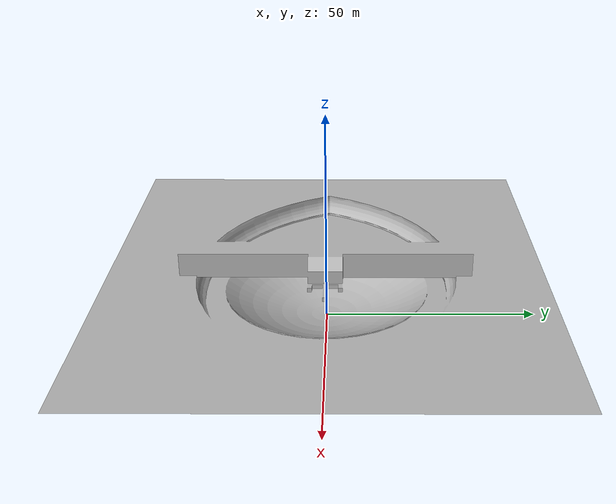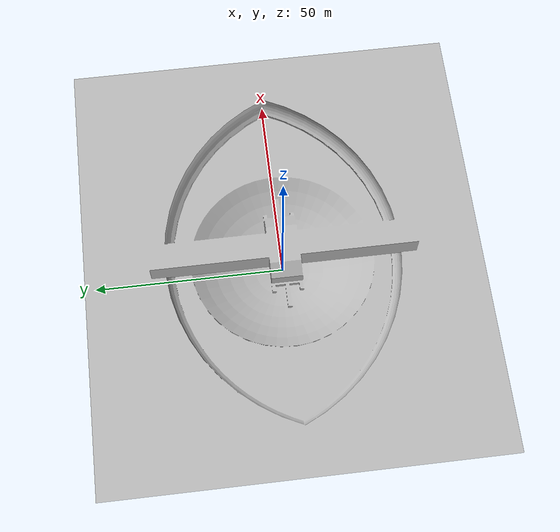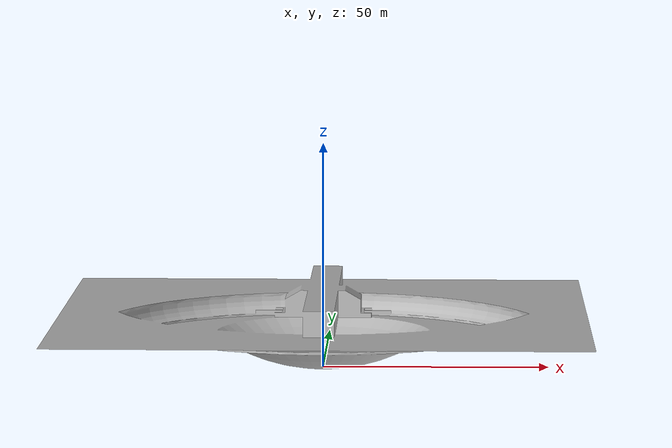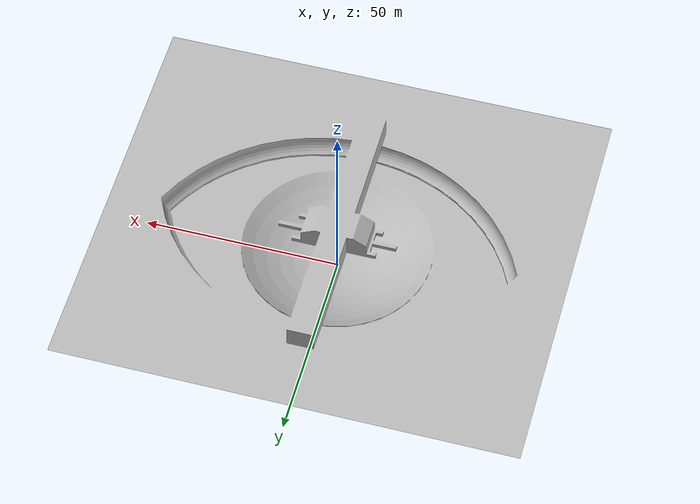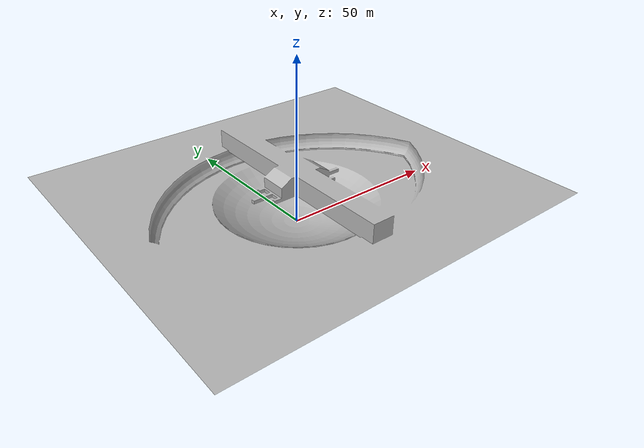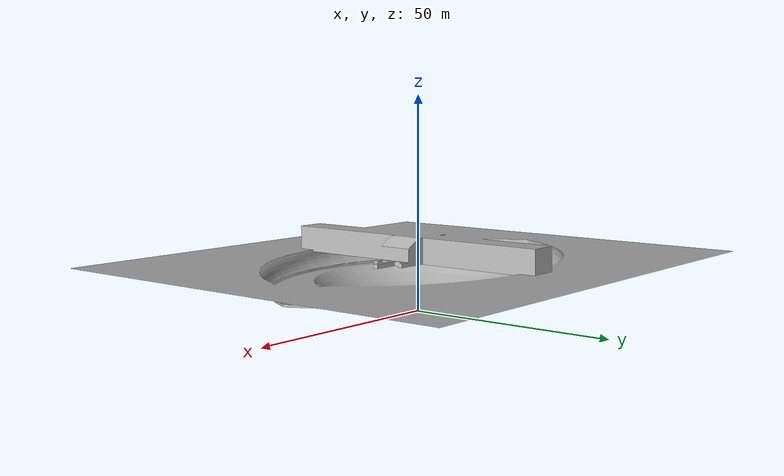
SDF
<?xml version="1.0" ?>
<sdf version="1.5">

<!-- Don't put name="transdec" because the naming conflict with the world and launch files will cause Gazebo to crash -->
<model name="competition_pool">
  <static>true</static>
  <link name="transdec_link">

  <visual name="transdec">
    <pose>0 0 0 0 0 0</pose>
    <geometry>
      <mesh><uri>model://transdec/meshes/transdec.dae</uri><scale>1 1 1</scale></mesh>
    </geometry>
  </visual>

  <collision name="transdec">
    <pose>0 0 0 0 0 0</pose>
    <geometry>
      <mesh><uri>model://transdec/meshes/transdec_collision.stl</uri><scale>1 1 1</scale></mesh>
    </geometry>
  </collision>

  </link>
</model>
</sdf>
